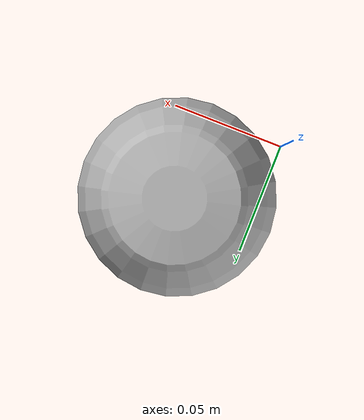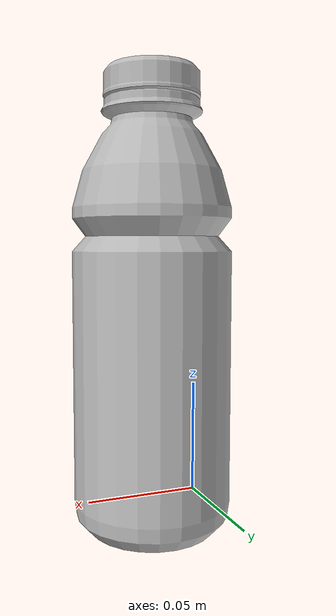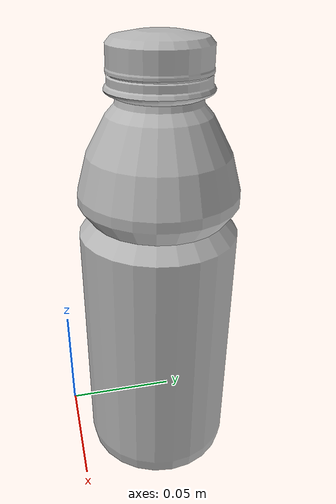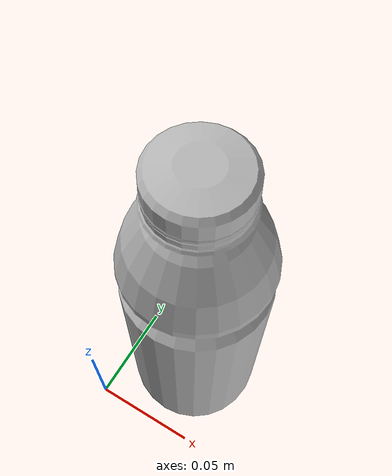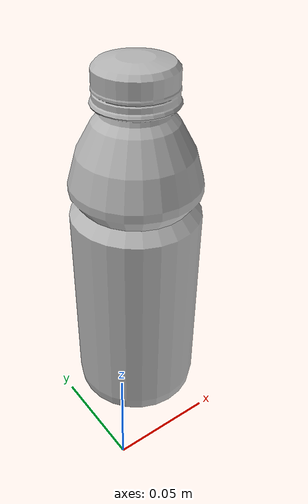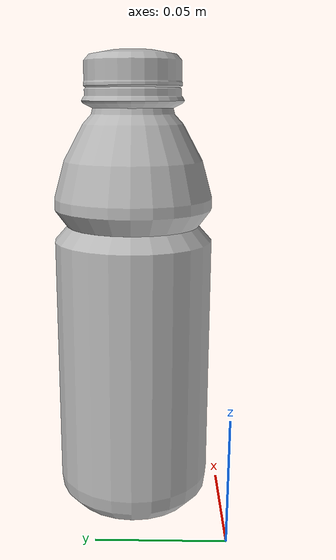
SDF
<?xml version="1.0" ?>
<sdf version="1.4">
  <model name="energy_drink">
    <static>0</static>
    <link name="link">
      <collision name="colision">
        <pose>0 0 0 0 0 0</pose>
          <geometry>
            <cylinder>
              <radius>0.03</radius>
              <length>0.02</length>
            </cylinder>
          </geometry>
        <surface>
          <friction>
            <ode>
              <mu>30.0</mu>
              <mu2>30.0</mu2>
              <fdir1>0 0 0</fdir1>
            </ode>
          </friction>
          <contact>
            <ode>
              <kp>1000000.0</kp>
              <kd>100.0</kd>
              <min_depth>0.0025</min_depth>
              <max_vel>1.0</max_vel>
            </ode>
          </contact>
        </surface>
      </collision>

      <visual name="visual1">
        <pose>0 0 0 0 0 0</pose>
        <geometry>
          <mesh>
            <uri>model://energy_drink/meshes/model.dae</uri>
	    <scale> 1 1 1 </scale>
          </mesh>
        </geometry>
      </visual>

      <velocity_decay>
        <linear>0.000000</linear>
        <angular>0.000000</angular>
      </velocity_decay>
      <self_collide>0</self_collide>
      <kinematic>0</kinematic>
      <gravity>1</gravity>
    </link>
  </model>
</sdf>
